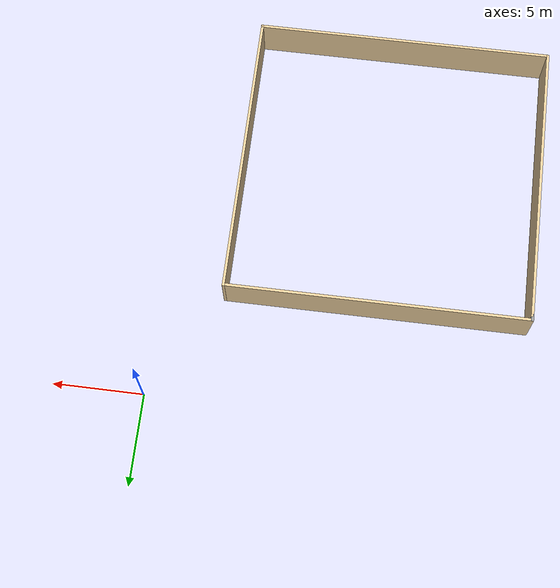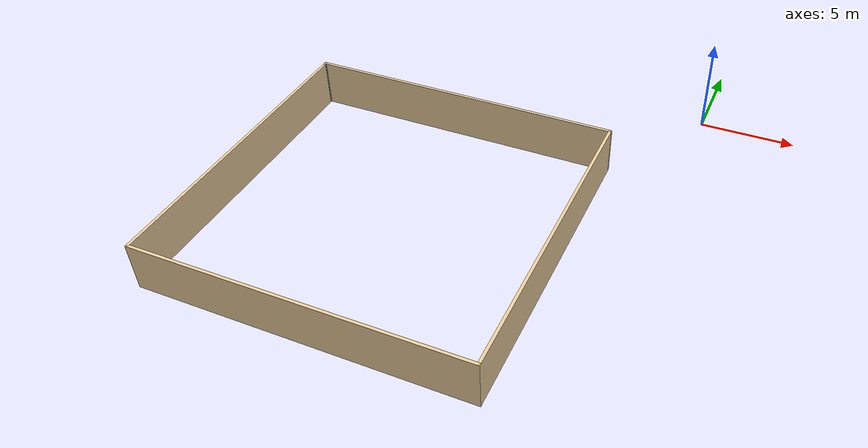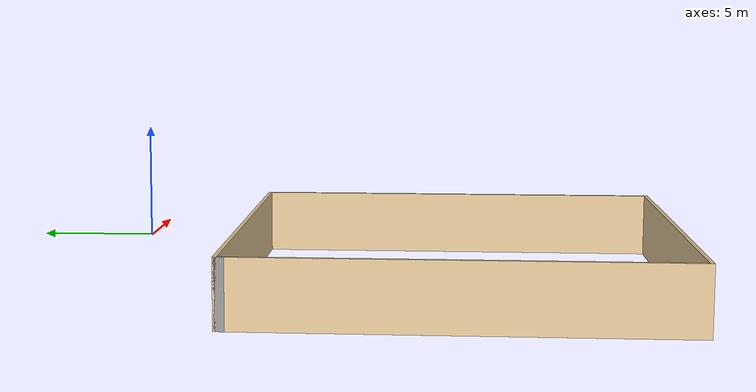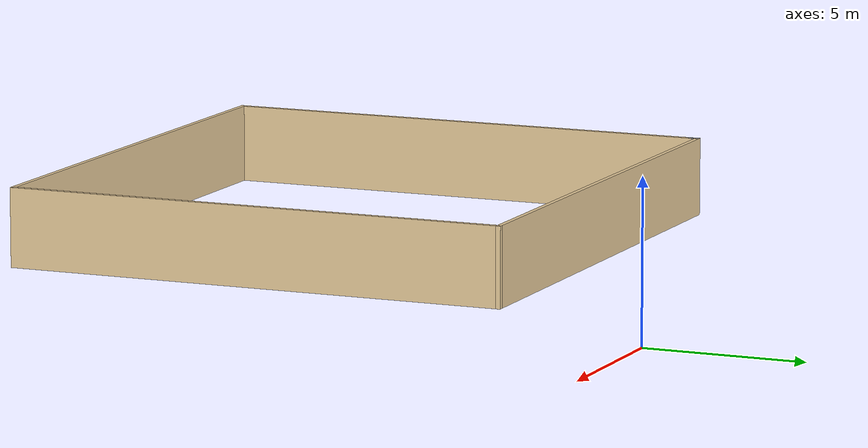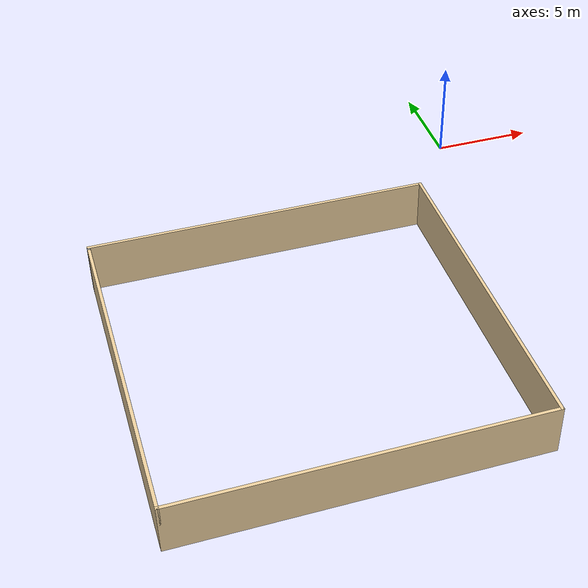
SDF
<?xml version='1.0'?>
<sdf version='1.6'>
  <model name='mymodel'>
    <pose frame=''>-11.9056 -13.9712 0 0 -0 0</pose>
    <link name='Wall_59'>
      <collision name='Wall_59_Collision'>
        <geometry>
          <box>
            <size>16 0.15 2.5</size>
          </box>
        </geometry>
        <pose frame=''>0 0 1.25 0 -0 0</pose>
      </collision>
      <visual name='Wall_59_Visual'>
        <pose frame=''>0 0 1.25 0 -0 0</pose>
        <geometry>
          <box>
            <size>16 0.15 2.5</size>
          </box>
        </geometry>
        <material>
          <script>
            <uri>file://media/materials/scripts/gazebo.material</uri>
            <name>Gazebo/Grey</name>
          </script>
          <ambient>0.921569 0.807843 0.615686 1</ambient>
        </material>
        <meta>
          <layer>0</layer>
        </meta>
      </visual>
      <pose frame=''>-8.3 -0.125 0 0 0 -1.5708</pose>
    </link>
    <link name='Wall_60'>
      <collision name='Wall_60_Collision'>
        <geometry>
          <box>
            <size>16.75 0.15 2.5</size>
          </box>
        </geometry>
        <pose frame=''>0 0 1.25 0 -0 0</pose>
      </collision>
      <visual name='Wall_60_Visual'>
        <pose frame=''>0 0 1.25 0 -0 0</pose>
        <geometry>
          <box>
            <size>16.75 0.15 2.5</size>
          </box>
        </geometry>
        <material>
          <script>
            <uri>file://media/materials/scripts/gazebo.material</uri>
            <name>Gazebo/Grey</name>
          </script>
          <ambient>0.921569 0.807843 0.615686 1</ambient>
        </material>
        <meta>
          <layer>0</layer>
        </meta>
      </visual>
      <pose frame=''>0 -8.05 0 0 -0 0</pose>
    </link>
    <link name='Wall_61'>
      <collision name='Wall_61_Collision'>
        <geometry>
          <box>
            <size>16.25 0.15 2.5</size>
          </box>
        </geometry>
        <pose frame=''>0 0 1.25 0 -0 0</pose>
      </collision>
      <visual name='Wall_61_Visual'>
        <pose frame=''>0 0 1.25 0 -0 0</pose>
        <geometry>
          <box>
            <size>16.25 0.15 2.5</size>
          </box>
        </geometry>
        <material>
          <script>
            <uri>file://media/materials/scripts/gazebo.material</uri>
            <name>Gazebo/Grey</name>
          </script>
          <ambient>0.921569 0.807843 0.615686 1</ambient>
        </material>
        <meta>
          <layer>0</layer>
        </meta>
      </visual>
      <pose frame=''>8.3 0 0 0 -0 1.5708</pose>
    </link>
    <link name='Wall_62'>
      <collision name='Wall_62_Collision'>
        <geometry>
          <box>
            <size>16.75 0.15 2.5</size>
          </box>
        </geometry>
        <pose frame=''>0 0 1.25 0 -0 0</pose>
      </collision>
      <visual name='Wall_62_Visual'>
        <pose frame=''>0 0 1.25 0 -0 0</pose>
        <geometry>
          <box>
            <size>16.75 0.15 2.5</size>
          </box>
        </geometry>
        <material>
          <script>
            <uri>file://media/materials/scripts/gazebo.material</uri>
            <name>Gazebo/Grey</name>
          </script>
          <ambient>0.921569 0.807843 0.615686 1</ambient>
        </material>
        <meta>
          <layer>0</layer>
        </meta>
      </visual>
      <pose frame=''>0 8.05 0 0 -0 3.14159</pose>
    </link>
    <link name='Wall_63'>
      <collision name='Wall_63_Collision'>
        <geometry>
          <box>
            <size>0.4 0.15 2.5</size>
          </box>
        </geometry>
        <pose frame=''>0 0 1.25 0 -0 0</pose>
      </collision>
      <visual name='Wall_63_Visual'>
        <pose frame=''>0 0 1.25 0 -0 0</pose>
        <geometry>
          <box>
            <size>0.4 0.15 2.5</size>
          </box>
        </geometry>
        <material>
          <script>
            <uri>file://media/materials/scripts/gazebo.material</uri>
            <name>Gazebo/Grey</name>
          </script>
          <ambient>1 1 1 1</ambient>
        </material>
        <meta>
          <layer>0</layer>
        </meta>
      </visual>
      <pose frame=''>-8.3 7.925 0 0 0 -1.5708</pose>
    </link>
    <static>1</static>
  </model>
</sdf>
